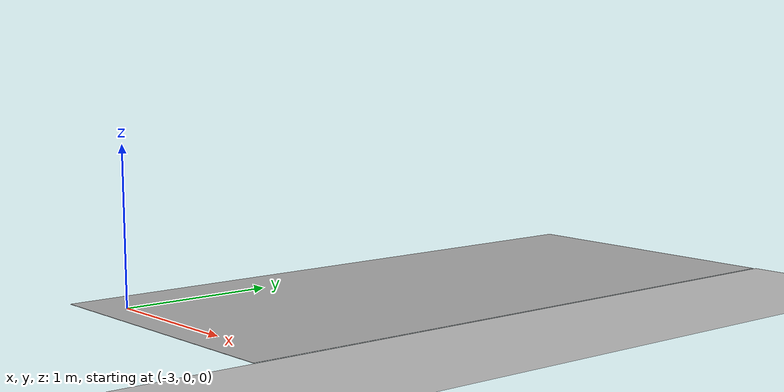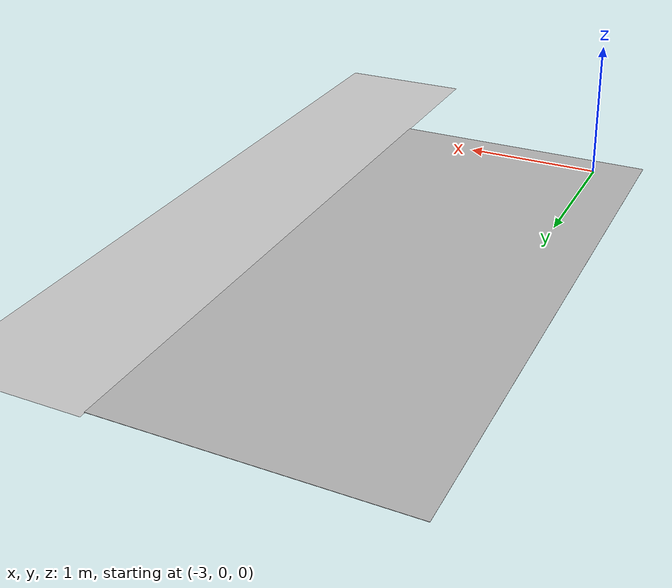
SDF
<?xml version="1.0" ?>
<sdf version="1.6">
  <model name="rai_floor_house">
    <static>true</static>

    <link name="link">

      <collision name="collision">
        <geometry>
          <plane>
            <normal>0 0 1</normal>
            <size>100 100</size>
          </plane>
        </geometry>
        <surface>
          <friction>
            <ode>
              <mu>100</mu>
              <mu2>50</mu2>
            </ode>
          </friction>
        </surface>
      </collision>

      <visual name="visual">

       <pose> 2.34984 -1.8866 0 0 -0 0 </pose>
       <cast_shadows>false</cast_shadows>
       <geometry>
		<plane>
		    <normal>0 0 1</normal>
		    <size>7.41745 11.788</size>
		</plane>
        </geometry>

        <material>
          <script>
            <uri>model://rai_floor_house/materials/scripts/repeated.material</uri>
            <name>RepeatedTexture</name>
          </script>
        </material>

      </visual>

      <visual name="visual_2">

       <pose>-2.34984 1.8866 0 0 -0 0</pose>

       <cast_shadows>false</cast_shadows>
       <geometry>
		<plane>
		    <normal>0 0 1</normal>
		    <size>1.98601 4.16918</size>
		</plane>
        </geometry>
        <material>
          <script>
            <uri>model://rai_floor_house/materials/scripts/repeated_2.material</uri>
            <name>RepeatedTexture_2</name>
          </script>
        </material>

      </visual>

      <visual name="visual_3">

       <pose>0 0 0 0 0 0</pose>

       <cast_shadows>false</cast_shadows>
       <geometry>
		<plane>
		    <normal>0 0 1</normal>
		    <size>100 100</size>
		</plane>
        </geometry>

        <material>
          <script>
            <uri>file://media/materials/scripts/gazebo.material</uri>
            <name>Gazebo/Grey</name>
          </script>
        </material>

        <transparency>1.0</transparency>

      </visual>

    </link>
  </model>
</sdf>
